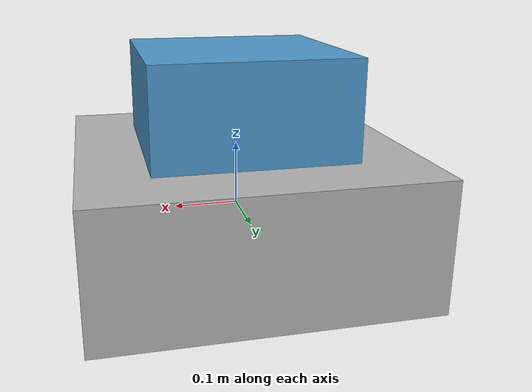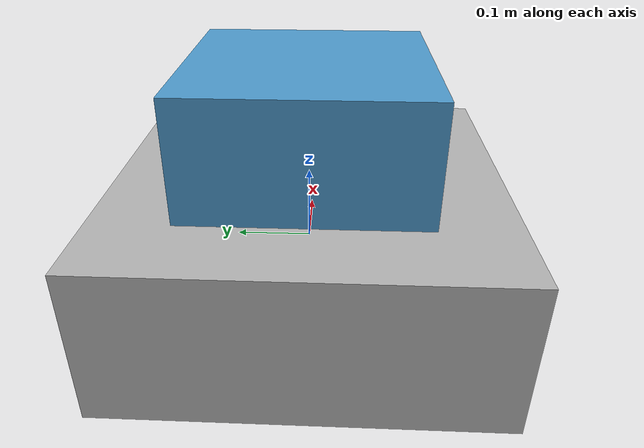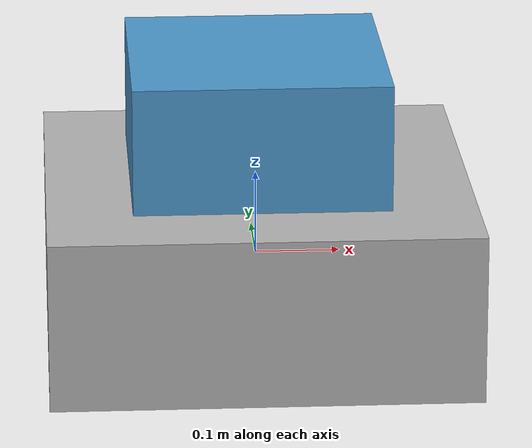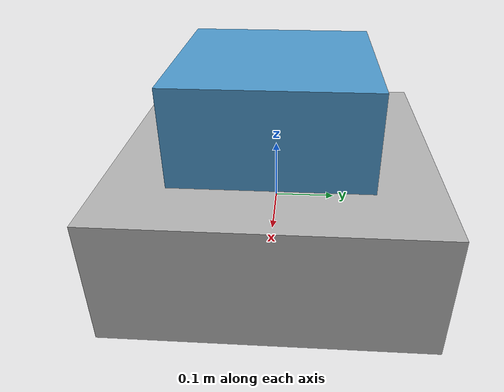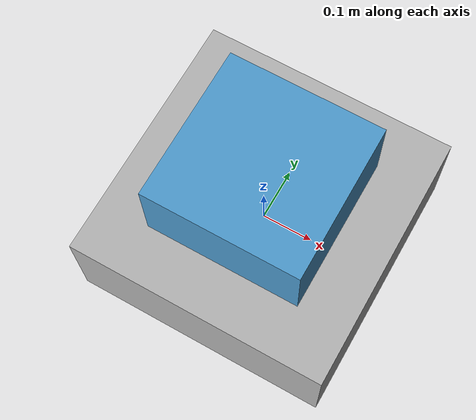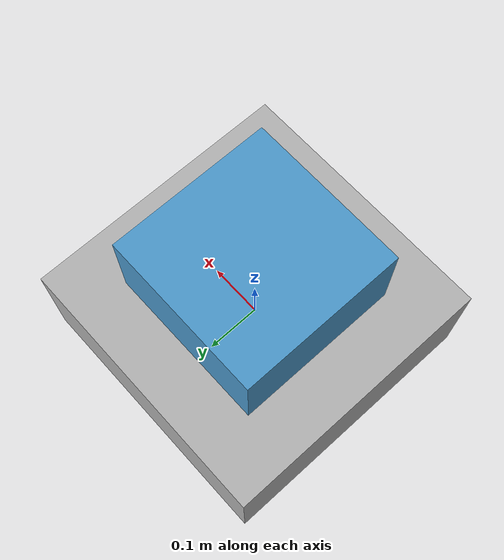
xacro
<?xml version="1.0"?>
<robot name="two_boxes" xmlns:xacro="http://www.ros.org/wiki/xacro">

  <!-- 재료 속성 정의 -->
  <xacro:property name="base_color" value="0.7 0.7 0.7 1" />
  <xacro:property name="top_color" value="0.3 0.6 0.8 1" />
  <xacro:property name="base_mass" value="1.0" />
  <xacro:property name="top_mass" value="0.5" />

  <!-- 기본 박스 크기 -->
  <xacro:property name="base_x" value="0.5" />
  <xacro:property name="base_y" value="0.5" />
  <xacro:property name="base_z" value="0.2" />

  <!-- 상단 박스 크기 -->
  <xacro:property name="top_x" value="0.3" />
  <xacro:property name="top_y" value="0.3" />
  <xacro:property name="top_z" value="0.15" />

  <!-- 관성 매크로 -->
  <xacro:macro name="box_inertia" params="mass x y z">
    <inertial>
      <mass value="${mass}" />
      <inertia
        ixx="${mass * (y*y + z*z) / 12}"
        ixy="0"
        ixz="0"
        iyy="${mass * (x*x + z*z) / 12}"
        iyz="0"
        izz="${mass * (x*x + y*y) / 12}" />
    </inertial>
  </xacro:macro>

  <!-- 기본 링크 (베이스 박스) -->
  <link name="base_link">
    <visual>
      <geometry>
        <box size="${base_x} ${base_y} ${base_z}" />
      </geometry>
      <material name="base_material">
        <color rgba="${base_color}" />
      </material>
    </visual>
    <collision>
      <geometry>
        <box size="${base_x} ${base_y} ${base_z}" />
      </geometry>
    </collision>
    <xacro:box_inertia mass="${base_mass}" x="${base_x}" y="${base_y}" z="${base_z}" />
  </link>

  <!-- 상단 박스 링크 -->
  <link name="top_box">
    <visual>
      <geometry>
        <box size="${top_x} ${top_y} ${top_z}" />
      </geometry>
      <material name="top_material">
        <color rgba="${top_color}" />
      </material>
    </visual>
    <collision>
      <geometry>
        <box size="${top_x} ${top_y} ${top_z}" />
      </geometry>
    </collision>
    <xacro:box_inertia mass="${top_mass}" x="${top_x}" y="${top_y}" z="${top_z}" />
  </link>

  <!-- 기본 박스와 상단 박스를 연결하는 조인트 -->
  <joint name="base_to_top" type="fixed">
    <parent link="base_link" />
    <child link="top_box" />
    <origin xyz="0 0 ${base_z/2 + top_z/2}" rpy="0 0 0" />
  </joint>

  <!-- 가제보용 재질 설정 -->
  <gazebo reference="base_link">
    <material>Gazebo/Grey</material>
  </gazebo>

  <gazebo reference="top_box">
    <material>Gazebo/Blue</material>
  </gazebo>

</robot>
